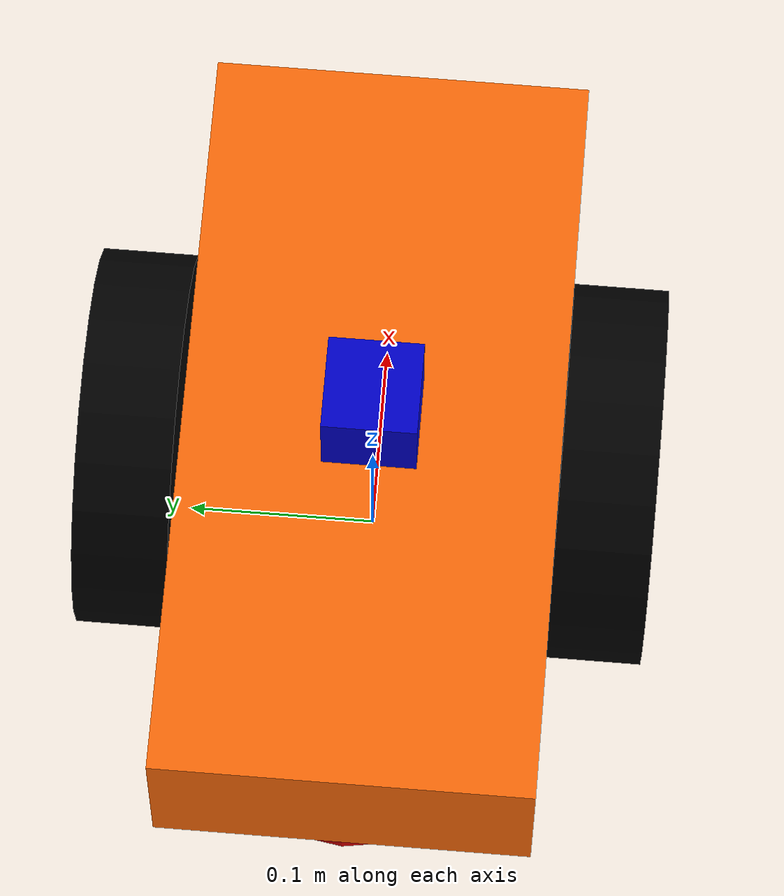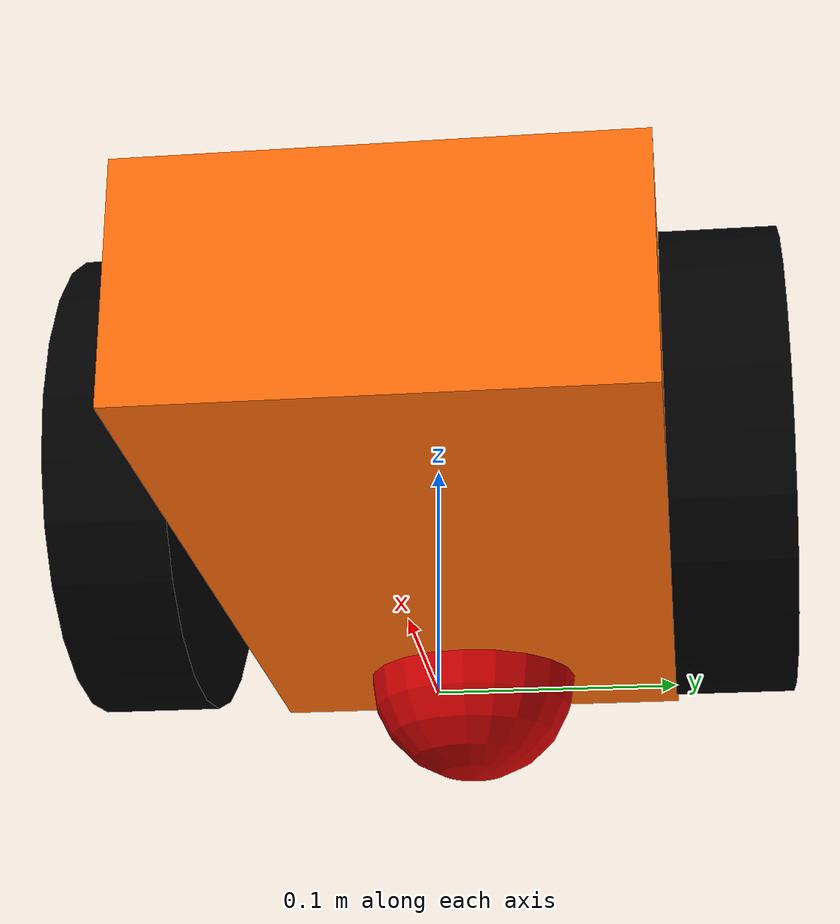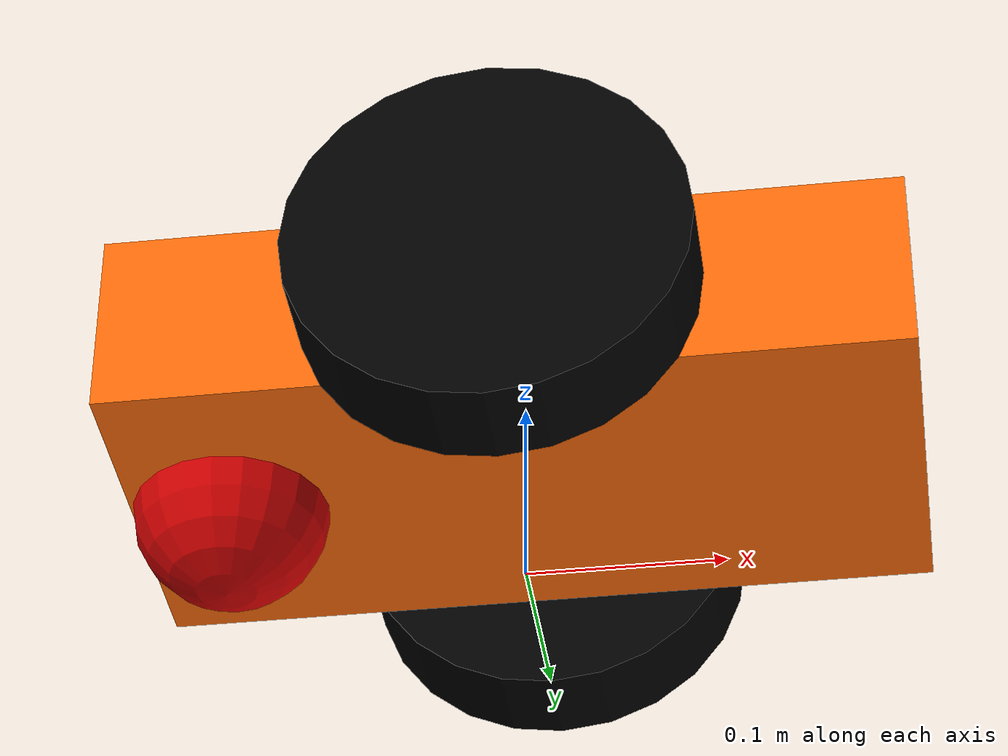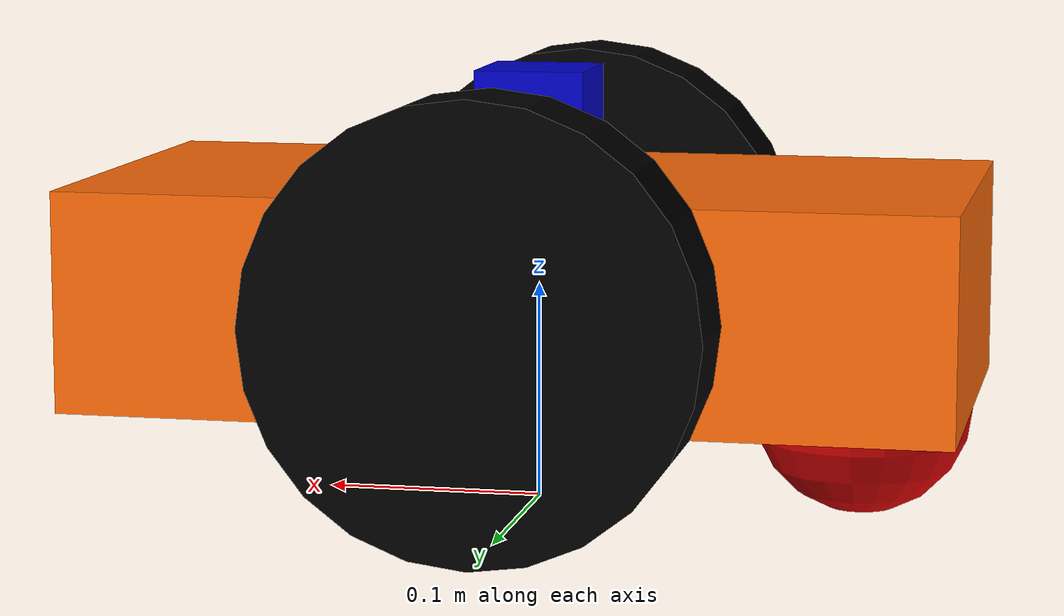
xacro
<?xml version="1.0"?>
<robot name="ROSBot" xmlns:xacro="http://www.ros.org/wiki/xacro">
    <xacro:property name="PI" value="3.1415926535897931"/>

    <xacro:property name="chassisHeight" value="0.1"/>
    <xacro:property name="chassisLength" value="0.4"/>
    <xacro:property name="chassisWidth" value="0.2"/>
    <xacro:property name="chassisMass" value="50"/>

    <xacro:property name="casterRadius" value="0.05"/>
    <xacro:property name="casterMass" value="5"/>

    <xacro:property name="wheelWidth" value="0.05"/>
    <xacro:property name="wheelRadius" value="0.1"/>
    <xacro:property name="wheelPos" value="0.2"/>
    <xacro:property name="wheelMass" value="5"/>

    <xacro:property name="cameraSize" value="0.05"/>
    <xacro:property name="cameraMass" value="0.1"/>

    <xacro:include filename="$(find ROSBot_description)/urdf/ROSBot.gazebo"/>
    <xacro:include filename="$(find ROSBot_description)/urdf/materials.xacro"/>
    <xacro:include filename="$(find ROSBot_description)/urdf/macros.xacro"/>

    <link name="base_link"/>

    <link name="chassis">
        <collision>
            <origin xyz="0 0 ${wheelRadius}" rpy="0 0 0"/>
            <geometry>
                <box size="${chassisLength} ${chassisWidth} ${chassisHeight}"/>
            </geometry>
        </collision>
        <visual>
            <origin xyz="0 0 ${wheelRadius}" rpy="0 0 0"/>
            <geometry>
                <box size="${chassisLength} ${chassisWidth} ${chassisHeight}"/>
            </geometry>
            <material name="orange"/>
        </visual>
        <inertial>
            <origin xyz="0 0 ${wheelRadius}" rpy="0 0 0"/>
            <mass value="${chassisMass}"/>
            <box_inertia m="${chassisMass}" x="${chassisLength}" y="${chassisWidth}" z="${chassisHeight}"/>
        </inertial>
    </link>

    <link name="caster_wheel">
        <collision>
            <origin xyz="${casterRadius-chassisLength/2} 0 ${casterRadius-chassisHeight+wheelRadius}" rpy="0 0 0"/>
            <geometry>
                <sphere radius="${casterRadius}"/>
            </geometry>
        </collision>
        <visual>
            <origin xyz="${casterRadius-chassisLength/2} 0 ${casterRadius-chassisHeight+wheelRadius}" rpy="0 0 0"/>
            <geometry>
                <sphere radius="${casterRadius}"/>
            </geometry>
            <material name="red"/>
        </visual>
        <inertial>
            <origin xyz="${casterRadius-chassisLength/2} 0 ${casterRadius-chassisHeight+wheelRadius}" rpy="0 0 0"/>
            <mass value="${casterMass}"/>
            <sphere_inertia m="${casterMass}" r="${casterRadius}"/>
        </inertial>
    </link>

    <wheel lr="left" tY="1"/>
    <wheel lr="right" tY="-1"/>

    <link name="camera">
        <collision>
            <origin xyz="0 0 ${wheelRadius+chassisHeight/2+cameraSize/2}" rpy="0 0 0"/>
            <geometry>
                <box size="${cameraSize} ${cameraSize} ${cameraSize}"/>
            </geometry>
        </collision>
        <visual>
            <origin xyz="0 0 ${wheelRadius+chassisHeight/2+cameraSize/2}" rpy="0 0 0"/>
            <geometry>
                <box size="${cameraSize} ${cameraSize} ${cameraSize}"/>
            </geometry>
            <material name="blue"/>
        </visual>
        <inertial>
            <mass value="${cameraMass}"/>
            <origin xyz="0 0 ${wheelRadius+chassisHeight/2+cameraSize/2}" rpy="0 0 0"/>
            <box_inertia m="${cameraMass}" x="${cameraSize}" y="${cameraSize}" z="${cameraSize}"/>
        </inertial>
    </link>

    <joint name="camera_joint" type="fixed">
        <parent link="chassis"/>
        <child link="camera"/>
        <origin xyz="0 0 ${2*wheelRadius+chassisHeight+cameraSize}" rpy="${PI} 0 0"/>
    </joint>

    <joint name="base_joint" type="fixed">
        <parent link="base_link"/>
        <child link="chassis"/>
    </joint>
    <joint name="fixed" type="fixed">
        <parent link="chassis"/>
        <child link="caster_wheel"/>
    </joint>

</robot>

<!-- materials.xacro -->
<robot name="mybot" xmlns:xacro="http://www.ros.org/wiki/xacro">
        <material name="black">
            <color rgba="0.0 0.0 0.0 1.0"/>
        </material>

        <material name="blue">
            <color rgba="0.0 0.0 0.8 1.0"/>
        </material>

        <material name="green">
            <color rgba="0.0 0.8 0.0 1.0"/>
        </material>

        <material name="grey">
            <color rgba="0.2 0.2 0.2 1.0"/>
        </material>

        <material name="orange">
            <color rgba="${255/255} ${108/255} ${10/255} 1.0"/>
        </material>

        <material name="brown">
            <color rgba="${222/255} ${207/255} ${195/255} 1.0"/>
        </material>

        <material name="red">
            <color rgba="0.8 0.0 0.0 1.0"/>
        </material>

        <material name="white">
            <color rgba="1.0 1.0 1.0 1.0"/>
        </material>
</robot>

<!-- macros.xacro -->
<robot name="mybot" xmlns:xacro="http://www.ros.org/wiki/xacro">
        <macro name="cylinder_inertia" params="m r h">
            <inertia ixx="${m*(3*r*r+h*h)/12}" ixy="0" ixz="0" iyy="${m*(3*r*r+h*h)/12}" iyz="0" izz="${m*r*r/2}"/>
        </macro>

        <macro name="box_inertia" params="m x y z">
            <inertia ixx="${m*(y*y+z*z)/12}" ixy="0" ixz="0" iyy="${m*(x*x+z*z)/12}" iyz="0" izz="${m*(x*x+z*z)/12}"/>
        </macro>

        <macro name="sphere_inertia" params="m r">
            <inertia ixx="${2*m*r*r/5}" ixy="0" ixz="0" iyy="${2*m*r*r/5}" iyz="0" izz="${2*m*r*r/5}"/>
        </macro>

        <macro name="wheel" params="lr tY">
            <link name="${lr}_wheel">
                <collision>
                    <origin xyz="0 0 0" rpy="0 ${PI/2} ${PI/2}"/>
                    <geometry>
                        <cylinder length="${wheelWidth}" radius="${wheelRadius}"/>
                    </geometry>
                </collision>
                <visual>
                    <origin xyz="0 0 0" rpy="0 ${PI/2} ${PI/2}"/>
                    <geometry>
                        <cylinder length="${wheelWidth}" radius="${wheelRadius}"/>
                    </geometry>
                    <material name="black"/>
                </visual>
                <inertial>
                    <origin xyz="0 0 0" rpy="0 ${PI/2} ${PI/2}"/>
                    <mass value="${wheelMass}"/>
                    <cylinder_inertia m="${wheelMass}" r="${wheelRadius}" h="${wheelWidth}"/>
                </inertial>
            </link>

            <gazebo reference="${lr}_wheel">
                <mu1 value="1.0"/>
                <mu2 value="1.0"/>
                <kp value="10000000.0" />
                <kd value="1.0" />
                <fkdir1 value="1 0 0"/>
                <material>Gazebo/Black</material>
            </gazebo>

            <joint name="${lr}_wheel_hinge" type="continuous">
                <parent link="chassis"/>
                <child link="${lr}_wheel"/>
                <origin xyz="${-wheelPos+chassisLength/2} ${tY*wheelWidth/2+tY*chassisWidth/2} ${wheelRadius}" rpy="0 0 0"/>
                <axis xyz="0 1 0" rpy="0 0 0"/>
                <limit effort="100" velocity="100"/>
                <joint_properties damping="0.0" friction="0.0"/>
            </joint>

            <transmission name="${lr}_trans">
                <type>transmission_interface/SimpleTransmission</type>
                <joint name="${lr}_wheel_hinge">
                    <hardwareInterface>EffortJointInterface</hardwareInterface>
                </joint>
                <actuator name="${lr}Motor">
                    <hardwareInterface>EffortJointInterface</hardwareInterface>
                    <mechanicalReduction>10</mechanicalReduction>
                </actuator>
            </transmission>
        </macro>
</robot>
